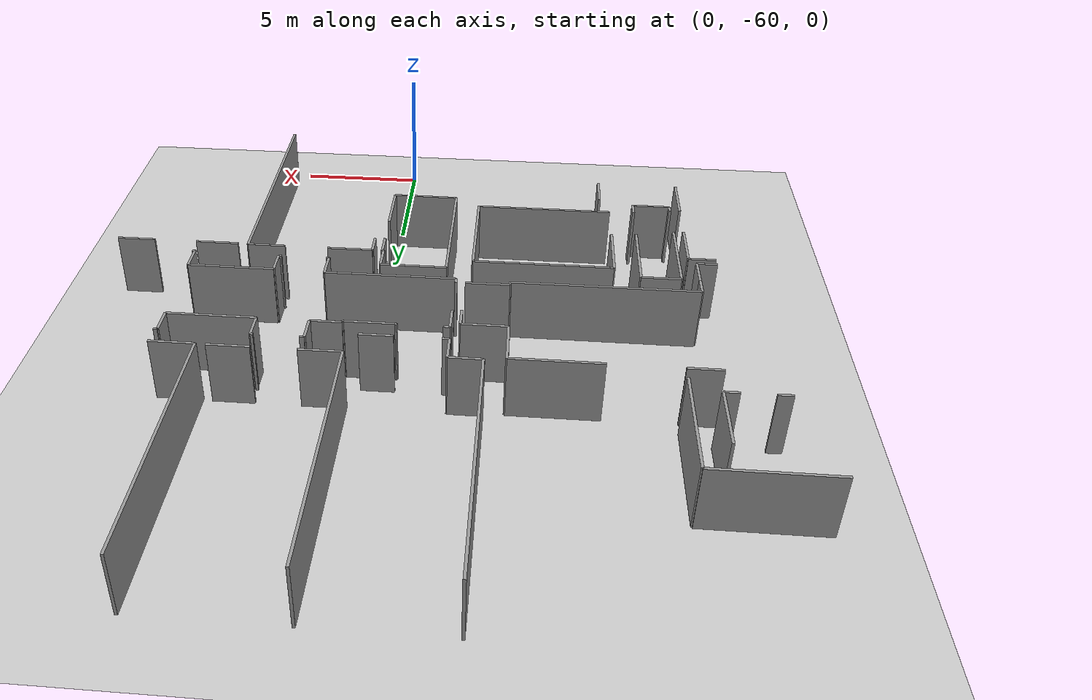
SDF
<sdf version="1.6">
 <world name="default">
  <model name="ground_plane">
   <static>1</static>
   <link name="link">
    <collision name="collision">
     <geometry><plane><normal>0 0 1</normal><size>100 100</size></plane></geometry>
     <surface><friction><ode><mu>100</mu><mu2>50</mu2></ode></friction></surface>
    </collision>
    <visual name="visual">
     <cast_shadows>0</cast_shadows>
     <geometry><plane><normal>0 0 1</normal><size>100 100</size></plane></geometry>
     <material>
      <script><uri>file://media/materials/scripts/gazebo.material</uri><name>Gazebo/Grey</name></script>
     </material>
    </visual>
   </link>
  </model>
  <model name="0510045922_A-40">
   <static>1</static>
   <link name="Wall_1206">
    <collision name="Wall_1206_Collision">
     <geometry><box><size>2.49577428989 0.1 2.5</size></box></geometry>
     <pose>1.24788714495 0 1.25 0 0 0</pose>
    </collision>
    <visual name="Wall_1206_Visual">
     <pose>1.24788714495 0 1.25 0 0 0</pose>
     <geometry><box><size>2.49577428989 0.1 2.5</size></box></geometry>
     <material>
      <script><uri>file://media/materials/scripts/gazebo.material</uri><name>Gazebo/Grey</name></script>
      <ambient>1 1 1 1</ambient>
     </material>
    </visual>
    <pose>122.225379678 -140.93827286 0 0 0 -1.57079632679</pose>
   </link>
   <link name="Wall_1207">
    <collision name="Wall_1207_Collision">
     <geometry><box><size>0.552583084451 0.1 2.5</size></box></geometry>
     <pose>0.276291542225 0 1.25 0 0 0</pose>
    </collision>
    <visual name="Wall_1207_Visual">
     <pose>0.276291542225 0 1.25 0 0 0</pose>
     <geometry><box><size>0.552583084451 0.1 2.5</size></box></geometry>
     <material>
      <script><uri>file://media/materials/scripts/gazebo.material</uri><name>Gazebo/Grey</name></script>
      <ambient>1 1 1 1</ambient>
     </material>
    </visual>
    <pose>122.225379678 -143.43404715 0 0 0 3.14159265359</pose>
   </link>
   <link name="Wall_1208">
    <collision name="Wall_1208_Collision">
     <geometry><box><size>0.543960271868 0.1 2.5</size></box></geometry>
     <pose>0.271980135934 0 1.25 0 0 0</pose>
    </collision>
    <visual name="Wall_1208_Visual">
     <pose>0.271980135934 0 1.25 0 0 0</pose>
     <geometry><box><size>0.543960271868 0.1 2.5</size></box></geometry>
     <material>
      <script><uri>file://media/materials/scripts/gazebo.material</uri><name>Gazebo/Grey</name></script>
      <ambient>1 1 1 1</ambient>
     </material>
    </visual>
    <pose>120.493156256 -143.43404715 0 0 0 -3.13318163699</pose>
   </link>
   <link name="Wall_1466">
    <collision name="Wall_1466_Collision">
     <geometry><box><size>4.32128105738 0.1 2.5</size></box></geometry>
     <pose>2.16064052869 0 1.25 0 0 0</pose>
    </collision>
    <visual name="Wall_1466_Visual">
     <pose>2.16064052869 0 1.25 0 0 0</pose>
     <geometry><box><size>4.32128105738 0.1 2.5</size></box></geometry>
     <material>
      <script><uri>file://media/materials/scripts/gazebo.material</uri><name>Gazebo/Grey</name></script>
      <ambient>1 1 1 1</ambient>
     </material>
    </visual>
    <pose>123.285302154 -144.07076317 0 0 0 1.57079632679</pose>
   </link>
   <link name="Wall_1467">
    <collision name="Wall_1467_Collision">
     <geometry><box><size>4.37211666773 0.1 2.5</size></box></geometry>
     <pose>2.18605833386 0 1.25 0 0 0</pose>
    </collision>
    <visual name="Wall_1467_Visual">
     <pose>2.18605833386 0 1.25 0 0 0</pose>
     <geometry><box><size>4.37211666773 0.1 2.5</size></box></geometry>
     <material>
      <script><uri>file://media/materials/scripts/gazebo.material</uri><name>Gazebo/Grey</name></script>
      <ambient>1 1 1 1</ambient>
     </material>
    </visual>
    <pose>123.285302154 -139.749482112 0 0 0 3.14159265359</pose>
   </link>
   <link name="Wall_1473">
    <collision name="Wall_1473_Collision">
     <geometry><box><size>1.28054902459 0.1 2.5</size></box></geometry>
     <pose>0.640274512296 0 1.25 0 0 0</pose>
    </collision>
    <visual name="Wall_1473_Visual">
     <pose>0.640274512296 0 1.25 0 0 0</pose>
     <geometry><box><size>1.28054902459 0.1 2.5</size></box></geometry>
     <material>
      <script><uri>file://media/materials/scripts/gazebo.material</uri><name>Gazebo/Grey</name></script>
      <ambient>1 1 1 1</ambient>
     </material>
    </visual>
    <pose>122.009582513 -144.58598208 0 0 0 0.0</pose>
   </link>
   <link name="Wall_1474">
    <collision name="Wall_1474_Collision">
     <geometry><box><size>3.34905000953 0.1 2.5</size></box></geometry>
     <pose>1.67452500477 0 1.25 0 0 0</pose>
    </collision>
    <visual name="Wall_1474_Visual">
     <pose>1.67452500477 0 1.25 0 0 0</pose>
     <geometry><box><size>3.34905000953 0.1 2.5</size></box></geometry>
     <material>
      <script><uri>file://media/materials/scripts/gazebo.material</uri><name>Gazebo/Grey</name></script>
      <ambient>1 1 1 1</ambient>
     </material>
    </visual>
    <pose>125.945783822 -144.58598208 0 0 0 0.0</pose>
   </link>
   <link name="Wall_1475">
    <collision name="Wall_1475_Collision">
     <geometry><box><size>1.83516553346 0.1 2.5</size></box></geometry>
     <pose>0.917582766728 0 1.25 0 0 0</pose>
    </collision>
    <visual name="Wall_1475_Visual">
     <pose>0.917582766728 0 1.25 0 0 0</pose>
     <geometry><box><size>1.83516553346 0.1 2.5</size></box></geometry>
     <material>
      <script><uri>file://media/materials/scripts/gazebo.material</uri><name>Gazebo/Grey</name></script>
      <ambient>1 1 1 1</ambient>
     </material>
    </visual>
    <pose>129.294833831 -144.58598208 0 0 0 -1.57079632679</pose>
   </link>
   <link name="Wall_1476">
    <collision name="Wall_1476_Collision">
     <geometry><box><size>1.70604308318 0.1 2.5</size></box></geometry>
     <pose>0.85302154159 0 1.25 0 0 0</pose>
    </collision>
    <visual name="Wall_1476_Visual">
     <pose>0.85302154159 0 1.25 0 0 0</pose>
     <geometry><box><size>1.70604308318 0.1 2.5</size></box></geometry>
     <material>
      <script><uri>file://media/materials/scripts/gazebo.material</uri><name>Gazebo/Grey</name></script>
      <ambient>1 1 1 1</ambient>
     </material>
    </visual>
    <pose>129.294833831 -146.421147614 0 0 0 0.0</pose>
   </link>
   <link name="Wall_1477">
    <collision name="Wall_1477_Collision">
     <geometry><box><size>0.838787570693 0.1 2.5</size></box></geometry>
     <pose>0.419393785347 0 1.25 0 0 0</pose>
    </collision>
    <visual name="Wall_1477_Visual">
     <pose>0.419393785347 0 1.25 0 0 0</pose>
     <geometry><box><size>0.838787570693 0.1 2.5</size></box></geometry>
     <material>
      <script><uri>file://media/materials/scripts/gazebo.material</uri><name>Gazebo/Grey</name></script>
      <ambient>1 1 1 1</ambient>
     </material>
    </visual>
    <pose>131.000876914 -146.421147614 0 0 0 -1.57079632679</pose>
   </link>
   <link name="Wall_1478">
    <collision name="Wall_1478_Collision">
     <geometry><box><size>1.6717290462 0.1 2.5</size></box></geometry>
     <pose>0.835864523098 0 1.25 0 0 0</pose>
    </collision>
    <visual name="Wall_1478_Visual">
     <pose>0.835864523098 0 1.25 0 0 0</pose>
     <geometry><box><size>1.6717290462 0.1 2.5</size></box></geometry>
     <material>
      <script><uri>file://media/materials/scripts/gazebo.material</uri><name>Gazebo/Grey</name></script>
      <ambient>1 1 1 1</ambient>
     </material>
    </visual>
    <pose>131.000876914 -149.031810383 0 0 0 3.14159265359</pose>
   </link>
   <link name="Wall_1479">
    <collision name="Wall_1479_Collision">
     <geometry><box><size>0.178687170363 0.1 2.5</size></box></geometry>
     <pose>0.0893435851814 0 1.25 0 0 0</pose>
    </collision>
    <visual name="Wall_1479_Visual">
     <pose>0.0893435851814 0 1.25 0 0 0</pose>
     <geometry><box><size>0.178687170363 0.1 2.5</size></box></geometry>
     <material>
      <script><uri>file://media/materials/scripts/gazebo.material</uri><name>Gazebo/Grey</name></script>
      <ambient>1 1 1 1</ambient>
     </material>
    </visual>
    <pose>129.329147868 -149.031810383 0 0 0 -1.57079632679</pose>
   </link>
   <link name="Wall_1480">
    <collision name="Wall_1480_Collision">
     <geometry><box><size>7.05217004512 0.1 2.5</size></box></geometry>
     <pose>3.52608502256 0 1.25 0 0 0</pose>
    </collision>
    <visual name="Wall_1480_Visual">
     <pose>3.52608502256 0 1.25 0 0 0</pose>
     <geometry><box><size>7.05217004512 0.1 2.5</size></box></geometry>
     <material>
      <script><uri>file://media/materials/scripts/gazebo.material</uri><name>Gazebo/Grey</name></script>
      <ambient>1 1 1 1</ambient>
     </material>
    </visual>
    <pose>129.329147868 -149.210497554 0 0 0 3.14159265359</pose>
   </link>
   <link name="Wall_1481">
    <collision name="Wall_1481_Collision">
     <geometry><box><size>0.744487513503 0.1 2.5</size></box></geometry>
     <pose>0.372243756752 0 1.25 0 0 0</pose>
    </collision>
    <visual name="Wall_1481_Visual">
     <pose>0.372243756752 0 1.25 0 0 0</pose>
     <geometry><box><size>0.744487513503 0.1 2.5</size></box></geometry>
     <material>
      <script><uri>file://media/materials/scripts/gazebo.material</uri><name>Gazebo/Grey</name></script>
      <ambient>1 1 1 1</ambient>
     </material>
    </visual>
    <pose>122.276977823 -149.210497554 0 0 0 -1.57079632679</pose>
   </link>
   <link name="Wall_1482">
    <collision name="Wall_1482_Collision">
     <geometry><box><size>1.16642307937 0.1 2.5</size></box></geometry>
     <pose>0.583211539684 0 1.25 0 0 0</pose>
    </collision>
    <visual name="Wall_1482_Visual">
     <pose>0.583211539684 0 1.25 0 0 0</pose>
     <geometry><box><size>1.16642307937 0.1 2.5</size></box></geometry>
     <material>
      <script><uri>file://media/materials/scripts/gazebo.material</uri><name>Gazebo/Grey</name></script>
      <ambient>1 1 1 1</ambient>
     </material>
    </visual>
    <pose>122.276977823 -149.954985067 0 0 0 -1.57079632679</pose>
   </link>
   <link name="Wall_1483">
    <collision name="Wall_1483_Collision">
     <geometry><box><size>0.78236004321 0.1 2.5</size></box></geometry>
     <pose>0.391180021605 0 1.25 0 0 0</pose>
    </collision>
    <visual name="Wall_1483_Visual">
     <pose>0.391180021605 0 1.25 0 0 0</pose>
     <geometry><box><size>0.78236004321 0.1 2.5</size></box></geometry>
     <material>
      <script><uri>file://media/materials/scripts/gazebo.material</uri><name>Gazebo/Grey</name></script>
      <ambient>1 1 1 1</ambient>
     </material>
    </visual>
    <pose>122.276977823 -151.121408146 0 0 0 3.14159265359</pose>
   </link>
   <link name="Wall_1493">
    <collision name="Wall_1493_Collision">
     <geometry><box><size>5.35629408401 0.1 2.5</size></box></geometry>
     <pose>2.678147042 0 1.25 0 0 0</pose>
    </collision>
    <visual name="Wall_1493_Visual">
     <pose>2.678147042 0 1.25 0 0 0</pose>
     <geometry><box><size>5.35629408401 0.1 2.5</size></box></geometry>
     <material>
      <script><uri>file://media/materials/scripts/gazebo.material</uri><name>Gazebo/Grey</name></script>
      <ambient>1 1 1 1</ambient>
     </material>
    </visual>
    <pose>131.782220245 -155.353981064 0 0 0 1.57079632679</pose>
   </link>
   <link name="Wall_1494">
    <collision name="Wall_1494_Collision">
     <geometry><box><size>2.52068373896 0.1 2.5</size></box></geometry>
     <pose>1.26034186948 0 1.25 0 0 0</pose>
    </collision>
    <visual name="Wall_1494_Visual">
     <pose>1.26034186948 0 1.25 0 0 0</pose>
     <geometry><box><size>2.52068373896 0.1 2.5</size></box></geometry>
     <material>
      <script><uri>file://media/materials/scripts/gazebo.material</uri><name>Gazebo/Grey</name></script>
      <ambient>1 1 1 1</ambient>
     </material>
    </visual>
    <pose>131.782220245 -149.99768698 0 0 0 0.0</pose>
   </link>
   <link name="Wall_1495">
    <collision name="Wall_1495_Collision">
     <geometry><box><size>0.973756116159 0.1 2.5</size></box></geometry>
     <pose>0.48687805808 0 1.25 0 0 0</pose>
    </collision>
    <visual name="Wall_1495_Visual">
     <pose>0.48687805808 0 1.25 0 0 0</pose>
     <geometry><box><size>0.973756116159 0.1 2.5</size></box></geometry>
     <material>
      <script><uri>file://media/materials/scripts/gazebo.material</uri><name>Gazebo/Grey</name></script>
      <ambient>1 1 1 1</ambient>
     </material>
    </visual>
    <pose>134.302903984 -149.99768698 0 0 0 -1.57079632679</pose>
   </link>
   <link name="Wall_1496">
    <collision name="Wall_1496_Collision">
     <geometry><box><size>0.0510897883968 0.1 2.5</size></box></geometry>
     <pose>0.0255448941984 0 1.25 0 0 0</pose>
    </collision>
    <visual name="Wall_1496_Visual">
     <pose>0.0255448941984 0 1.25 0 0 0</pose>
     <geometry><box><size>0.0510897883968 0.1 2.5</size></box></geometry>
     <material>
      <script><uri>file://media/materials/scripts/gazebo.material</uri><name>Gazebo/Grey</name></script>
      <ambient>1 1 1 1</ambient>
     </material>
    </visual>
    <pose>134.302903984 -150.971443096 0 0 0 0.0</pose>
   </link>
   <link name="Wall_1497">
    <collision name="Wall_1497_Collision">
     <geometry><box><size>0.901315371418 0.1 2.5</size></box></geometry>
     <pose>0.450657685709 0 1.25 0 0 0</pose>
    </collision>
    <visual name="Wall_1497_Visual">
     <pose>0.450657685709 0 1.25 0 0 0</pose>
     <geometry><box><size>0.901315371418 0.1 2.5</size></box></geometry>
     <material>
      <script><uri>file://media/materials/scripts/gazebo.material</uri><name>Gazebo/Grey</name></script>
      <ambient>1 1 1 1</ambient>
     </material>
    </visual>
    <pose>134.353993773 -150.971443096 0 0 0 -1.57079632679</pose>
   </link>
   <link name="Wall_1498">
    <collision name="Wall_1498_Collision">
     <geometry><box><size>2.16915549342 0.1 2.5</size></box></geometry>
     <pose>1.08457774671 0 1.25 0 0 0</pose>
    </collision>
    <visual name="Wall_1498_Visual">
     <pose>1.08457774671 0 1.25 0 0 0</pose>
     <geometry><box><size>2.16915549342 0.1 2.5</size></box></geometry>
     <material>
      <script><uri>file://media/materials/scripts/gazebo.material</uri><name>Gazebo/Grey</name></script>
      <ambient>1 1 1 1</ambient>
     </material>
    </visual>
    <pose>134.353993773 -153.202109678 0 0 0 -1.57079632679</pose>
   </link>
   <link name="Wall_1499">
    <collision name="Wall_1499_Collision">
     <geometry><box><size>2.57183160731 0.1 2.5</size></box></geometry>
     <pose>1.28591580366 0 1.25 0 0 0</pose>
    </collision>
    <visual name="Wall_1499_Visual">
     <pose>1.28591580366 0 1.25 0 0 0</pose>
     <geometry><box><size>2.57183160731 0.1 2.5</size></box></geometry>
     <material>
      <script><uri>file://media/materials/scripts/gazebo.material</uri><name>Gazebo/Grey</name></script>
      <ambient>1 1 1 1</ambient>
     </material>
    </visual>
    <pose>134.353993773 -155.371265171 0 0 0 3.13487205898</pose>
   </link>
   <link name="Wall_1501">
    <collision name="Wall_1501_Collision">
     <geometry><box><size>0.855054966004 0.1 2.5</size></box></geometry>
     <pose>0.427527483002 0 1.25 0 0 0</pose>
    </collision>
    <visual name="Wall_1501_Visual">
     <pose>0.427527483002 0 1.25 0 0 0</pose>
     <geometry><box><size>0.855054966004 0.1 2.5</size></box></geometry>
     <material>
      <script><uri>file://media/materials/scripts/gazebo.material</uri><name>Gazebo/Grey</name></script>
      <ambient>1 1 1 1</ambient>
     </material>
    </visual>
    <pose>134.74186948 -151.839461143 0 0 0 1.57079632679</pose>
   </link>
   <link name="Wall_1502">
    <collision name="Wall_1502_Collision">
     <geometry><box><size>1.75942047404 0.1 2.5</size></box></geometry>
     <pose>0.879710237021 0 1.25 0 0 0</pose>
    </collision>
    <visual name="Wall_1502_Visual">
     <pose>0.879710237021 0 1.25 0 0 0</pose>
     <geometry><box><size>1.75942047404 0.1 2.5</size></box></geometry>
     <material>
      <script><uri>file://media/materials/scripts/gazebo.material</uri><name>Gazebo/Grey</name></script>
      <ambient>1 1 1 1</ambient>
     </material>
    </visual>
    <pose>134.74186948 -150.984406177 0 0 0 0.0</pose>
   </link>
   <link name="Wall_1503">
    <collision name="Wall_1503_Collision">
     <geometry><box><size>1.46965749508 0.1 2.5</size></box></geometry>
     <pose>0.734828747538 0 1.25 0 0 0</pose>
    </collision>
    <visual name="Wall_1503_Visual">
     <pose>0.734828747538 0 1.25 0 0 0</pose>
     <geometry><box><size>1.46965749508 0.1 2.5</size></box></geometry>
     <material>
      <script><uri>file://media/materials/scripts/gazebo.material</uri><name>Gazebo/Grey</name></script>
      <ambient>1 1 1 1</ambient>
     </material>
    </visual>
    <pose>138.178356739 -150.984406177 0 0 0 0.0</pose>
   </link>
   <link name="Wall_1504">
    <collision name="Wall_1504_Collision">
     <geometry><box><size>9.61072631378 0.1 2.5</size></box></geometry>
     <pose>4.80536315689 0 1.25 0 0 0</pose>
    </collision>
    <visual name="Wall_1504_Visual">
     <pose>4.80536315689 0 1.25 0 0 0</pose>
     <geometry><box><size>9.61072631378 0.1 2.5</size></box></geometry>
     <material>
      <script><uri>file://media/materials/scripts/gazebo.material</uri><name>Gazebo/Grey</name></script>
      <ambient>1 1 1 1</ambient>
     </material>
    </visual>
    <pose>139.648014234 -150.984406177 0 0 0 -1.57079632679</pose>
   </link>
   <link name="Wall_1508">
    <collision name="Wall_1508_Collision">
     <geometry><box><size>1.67528753892 0.1 2.5</size></box></geometry>
     <pose>0.83764376946 0 1.25 0 0 0</pose>
    </collision>
    <visual name="Wall_1508_Visual">
     <pose>0.83764376946 0 1.25 0 0 0</pose>
     <geometry><box><size>1.67528753892 0.1 2.5</size></box></geometry>
     <material>
      <script><uri>file://media/materials/scripts/gazebo.material</uri><name>Gazebo/Grey</name></script>
      <ambient>1 1 1 1</ambient>
     </material>
    </visual>
    <pose>140.048853022 -151.004232065 0 0 0 0.0</pose>
   </link>
   <link name="Wall_1509">
    <collision name="Wall_1509_Collision">
     <geometry><box><size>1.48439982208 0.1 2.5</size></box></geometry>
     <pose>0.742199911038 0 1.25 0 0 0</pose>
    </collision>
    <visual name="Wall_1509_Visual">
     <pose>0.742199911038 0 1.25 0 0 0</pose>
     <geometry><box><size>1.48439982208 0.1 2.5</size></box></geometry>
     <material>
      <script><uri>file://media/materials/scripts/gazebo.material</uri><name>Gazebo/Grey</name></script>
      <ambient>1 1 1 1</ambient>
     </material>
    </visual>
    <pose>143.385194128 -151.004232065 0 0 0 0.0</pose>
   </link>
   <link name="Wall_1581">
    <collision name="Wall_1581_Collision">
     <geometry><box><size>9.63716083116 0.1 2.5</size></box></geometry>
     <pose>4.81858041558 0 1.25 0 0 0</pose>
    </collision>
    <visual name="Wall_1581_Visual">
     <pose>4.81858041558 0 1.25 0 0 0</pose>
     <geometry><box><size>9.63716083116 0.1 2.5</size></box></geometry>
     <material>
      <script><uri>file://media/materials/scripts/gazebo.material</uri><name>Gazebo/Grey</name></script>
      <ambient>1 1 1 1</ambient>
     </material>
    </visual>
    <pose>140.030043846 -144.47516045 0 0 0 1.57079632679</pose>
   </link>
   <link name="Wall_1586">
    <collision name="Wall_1586_Collision">
     <geometry><box><size>1.66741501307 0.1 2.5</size></box></geometry>
     <pose>0.833707506537 0 1.25 0 0 0</pose>
    </collision>
    <visual name="Wall_1586_Visual">
     <pose>0.833707506537 0 1.25 0 0 0</pose>
     <geometry><box><size>1.66741501307 0.1 2.5</size></box></geometry>
     <material>
      <script><uri>file://media/materials/scripts/gazebo.material</uri><name>Gazebo/Grey</name></script>
      <ambient>1 1 1 1</ambient>
     </material>
    </visual>
    <pose>141.697451865 -144.470331067 0 0 0 -3.13869632023</pose>
   </link>
   <link name="Wall_1587">
    <collision name="Wall_1587_Collision">
     <geometry><box><size>9.61936836754 0.1 2.5</size></box></geometry>
     <pose>4.80968418377 0 1.25 0 0 0</pose>
    </collision>
    <visual name="Wall_1587_Visual">
     <pose>4.80968418377 0 1.25 0 0 0</pose>
     <geometry><box><size>9.61936836754 0.1 2.5</size></box></geometry>
     <material>
      <script><uri>file://media/materials/scripts/gazebo.material</uri><name>Gazebo/Grey</name></script>
      <ambient>1 1 1 1</ambient>
     </material>
    </visual>
    <pose>134.886242613 -144.466264218 0 0 0 1.57079632679</pose>
   </link>
   <link name="Wall_1591">
    <collision name="Wall_1591_Collision">
     <geometry><box><size>1.55099447163 0.1 2.5</size></box></geometry>
     <pose>0.775497235814 0 1.25 0 0 0</pose>
    </collision>
    <visual name="Wall_1591_Visual">
     <pose>0.775497235814 0 1.25 0 0 0</pose>
     <geometry><box><size>1.55099447163 0.1 2.5</size></box></geometry>
     <material>
      <script><uri>file://media/materials/scripts/gazebo.material</uri><name>Gazebo/Grey</name></script>
      <ambient>1 1 1 1</ambient>
     </material>
    </visual>
    <pose>139.659198068 -144.451521891 0 0 0 3.14159265359</pose>
   </link>
   <link name="Wall_1592">
    <collision name="Wall_1592_Collision">
     <geometry><box><size>1.56987286994 0.1 2.5</size></box></geometry>
     <pose>0.784936434969 0 1.25 0 0 0</pose>
    </collision>
    <visual name="Wall_1592_Visual">
     <pose>0.784936434969 0 1.25 0 0 0</pose>
     <geometry><box><size>1.56987286994 0.1 2.5</size></box></geometry>
     <material>
      <script><uri>file://media/materials/scripts/gazebo.material</uri><name>Gazebo/Grey</name></script>
      <ambient>1 1 1 1</ambient>
     </material>
    </visual>
    <pose>136.45604626 -144.451521891 0 0 0 -3.13220173795</pose>
   </link>
   <link name="Wall_1593">
    <collision name="Wall_1593_Collision">
     <geometry><box><size>9.62546864078 0.1 2.5</size></box></geometry>
     <pose>4.81273432039 0 1.25 0 0 0</pose>
    </collision>
    <visual name="Wall_1593_Visual">
     <pose>4.81273432039 0 1.25 0 0 0</pose>
     <geometry><box><size>9.62546864078 0.1 2.5</size></box></geometry>
     <material>
      <script><uri>file://media/materials/scripts/gazebo.material</uri><name>Gazebo/Grey</name></script>
      <ambient>1 1 1 1</ambient>
     </material>
    </visual>
    <pose>130.08558175 -144.464230794 0 0 0 1.57079632679</pose>
   </link>
   <link name="Wall_1597">
    <collision name="Wall_1597_Collision">
     <geometry><box><size>1.24903094618 0.1 2.5</size></box></geometry>
     <pose>0.624515473089 0 1.25 0 0 0</pose>
    </collision>
    <visual name="Wall_1597_Visual">
     <pose>0.624515473089 0 1.25 0 0 0</pose>
     <geometry><box><size>1.24903094618 0.1 2.5</size></box></geometry>
     <material>
      <script><uri>file://media/materials/scripts/gazebo.material</uri><name>Gazebo/Grey</name></script>
      <ambient>1 1 1 1</ambient>
     </material>
    </visual>
    <pose>134.510821631 -145.505089915 0 0 0 3.14159265359</pose>
   </link>
   <link name="Wall_1598">
    <collision name="Wall_1598_Collision">
     <geometry><box><size>0.265616064053 0.1 2.5</size></box></geometry>
     <pose>0.132808032026 0 1.25 0 0 0</pose>
    </collision>
    <visual name="Wall_1598_Visual">
     <pose>0.132808032026 0 1.25 0 0 0</pose>
     <geometry><box><size>0.265616064053 0.1 2.5</size></box></geometry>
     <material>
      <script><uri>file://media/materials/scripts/gazebo.material</uri><name>Gazebo/Grey</name></script>
      <ambient>1 1 1 1</ambient>
     </material>
    </visual>
    <pose>131.575065133 -145.505089915 0 0 0 3.14159265359</pose>
   </link>
   <link name="Wall_1599">
    <collision name="Wall_1599_Collision">
     <geometry><box><size>1.03704645104 0.1 2.5</size></box></geometry>
     <pose>0.518523225519 0 1.25 0 0 0</pose>
    </collision>
    <visual name="Wall_1599_Visual">
     <pose>0.518523225519 0 1.25 0 0 0</pose>
     <geometry><box><size>1.03704645104 0.1 2.5</size></box></geometry>
     <material>
      <script><uri>file://media/materials/scripts/gazebo.material</uri><name>Gazebo/Grey</name></script>
      <ambient>1 1 1 1</ambient>
     </material>
    </visual>
    <pose>131.309449069 -145.505089915 0 0 0 1.57079632679</pose>
   </link>
   <link name="Wall_1600">
    <collision name="Wall_1600_Collision">
     <geometry><box><size>1.22387325778 0.1 2.5</size></box></geometry>
     <pose>0.611936628891 0 1.25 0 0 0</pose>
    </collision>
    <visual name="Wall_1600_Visual">
     <pose>0.611936628891 0 1.25 0 0 0</pose>
     <geometry><box><size>1.22387325778 0.1 2.5</size></box></geometry>
     <material>
      <script><uri>file://media/materials/scripts/gazebo.material</uri><name>Gazebo/Grey</name></script>
      <ambient>1 1 1 1</ambient>
     </material>
    </visual>
    <pose>131.309449069 -144.468043464 0 0 0 3.13847739887</pose>
   </link>
   <link name="Wall_1601">
    <collision name="Wall_1601_Collision">
     <geometry><box><size>1.87583402173 0.1 2.5</size></box></geometry>
     <pose>0.937917010866 0 1.25 0 0 0</pose>
    </collision>
    <visual name="Wall_1601_Visual">
     <pose>0.937917010866 0 1.25 0 0 0</pose>
     <geometry><box><size>1.87583402173 0.1 2.5</size></box></geometry>
     <material>
      <script><uri>file://media/materials/scripts/gazebo.material</uri><name>Gazebo/Grey</name></script>
      <ambient>1 1 1 1</ambient>
     </material>
    </visual>
    <pose>133.295342187 -146.220092775 0 0 0 0.0</pose>
   </link>
   <link name="Wall_1602">
    <collision name="Wall_1602_Collision">
     <geometry><box><size>0.0719323886382 0.1 2.5</size></box></geometry>
     <pose>0.0359661943191 0 1.25 0 0 0</pose>
    </collision>
    <visual name="Wall_1602_Visual">
     <pose>0.0359661943191 0 1.25 0 0 0</pose>
     <geometry><box><size>0.0719323886382 0.1 2.5</size></box></geometry>
     <material>
      <script><uri>file://media/materials/scripts/gazebo.material</uri><name>Gazebo/Grey</name></script>
      <ambient>1 1 1 1</ambient>
     </material>
    </visual>
    <pose>135.171176209 -146.220092775 0 0 0 1.57079632679</pose>
   </link>
   <link name="Wall_1603">
    <collision name="Wall_1603_Collision">
     <geometry><box><size>1.17354006482 0.1 2.5</size></box></geometry>
     <pose>0.586770032408 0 1.25 0 0 0</pose>
    </collision>
    <visual name="Wall_1603_Visual">
     <pose>0.586770032408 0 1.25 0 0 0</pose>
     <geometry><box><size>1.17354006482 0.1 2.5</size></box></geometry>
     <material>
      <script><uri>file://media/materials/scripts/gazebo.material</uri><name>Gazebo/Grey</name></script>
      <ambient>1 1 1 1</ambient>
     </material>
    </visual>
    <pose>135.171176209 -146.148160386 0 0 0 0.0</pose>
   </link>
   <link name="Wall_1604">
    <collision name="Wall_1604_Collision">
     <geometry><box><size>0.974010294211 0.1 2.5</size></box></geometry>
     <pose>0.487005147106 0 1.25 0 0 0</pose>
    </collision>
    <visual name="Wall_1604_Visual">
     <pose>0.487005147106 0 1.25 0 0 0</pose>
     <geometry><box><size>0.974010294211 0.1 2.5</size></box></geometry>
     <material>
      <script><uri>file://media/materials/scripts/gazebo.material</uri><name>Gazebo/Grey</name></script>
      <ambient>1 1 1 1</ambient>
     </material>
    </visual>
    <pose>136.344716274 -146.148160386 0 0 0 1.57079632679</pose>
   </link>
   <link name="Wall_1605">
    <collision name="Wall_1605_Collision">
     <geometry><box><size>0.172841075173 0.1 2.5</size></box></geometry>
     <pose>0.0864205375866 0 1.25 0 0 0</pose>
    </collision>
    <visual name="Wall_1605_Visual">
     <pose>0.0864205375866 0 1.25 0 0 0</pose>
     <geometry><box><size>0.172841075173 0.1 2.5</size></box></geometry>
     <material>
      <script><uri>file://media/materials/scripts/gazebo.material</uri><name>Gazebo/Grey</name></script>
      <ambient>1 1 1 1</ambient>
     </material>
    </visual>
    <pose>136.344716274 -145.174150092 0 0 0 0.0</pose>
   </link>
   <link name="Wall_1606">
    <collision name="Wall_1606_Collision">
     <geometry><box><size>0.0983669060177 0.1 2.5</size></box></geometry>
     <pose>0.0491834530088 0 1.25 0 0 0</pose>
    </collision>
    <visual name="Wall_1606_Visual">
     <pose>0.0491834530088 0 1.25 0 0 0</pose>
     <geometry><box><size>0.0983669060177 0.1 2.5</size></box></geometry>
     <material>
      <script><uri>file://media/materials/scripts/gazebo.material</uri><name>Gazebo/Grey</name></script>
      <ambient>1 1 1 1</ambient>
     </material>
    </visual>
    <pose>138.156497426 -145.174150092 0 0 0 0.0</pose>
   </link>
   <link name="Wall_1607">
    <collision name="Wall_1607_Collision">
     <geometry><box><size>0.978585499142 0.1 2.5</size></box></geometry>
     <pose>0.489292749571 0 1.25 0 0 0</pose>
    </collision>
    <visual name="Wall_1607_Visual">
     <pose>0.489292749571 0 1.25 0 0 0</pose>
     <geometry><box><size>0.978585499142 0.1 2.5</size></box></geometry>
     <material>
      <script><uri>file://media/materials/scripts/gazebo.material</uri><name>Gazebo/Grey</name></script>
      <ambient>1 1 1 1</ambient>
     </material>
    </visual>
    <pose>138.254864332 -145.174150092 0 0 0 -1.57079632679</pose>
   </link>
   <link name="Wall_1608">
    <collision name="Wall_1608_Collision">
     <geometry><box><size>3.30609391879 0.1 2.5</size></box></geometry>
     <pose>1.6530469594 0 1.25 0 0 0</pose>
    </collision>
    <visual name="Wall_1608_Visual">
     <pose>1.6530469594 0 1.25 0 0 0</pose>
     <geometry><box><size>3.30609391879 0.1 2.5</size></box></geometry>
     <material>
      <script><uri>file://media/materials/scripts/gazebo.material</uri><name>Gazebo/Grey</name></script>
      <ambient>1 1 1 1</ambient>
     </material>
    </visual>
    <pose>138.254864332 -146.152735591 0 0 0 0.0</pose>
   </link>
   <link name="Wall_1609">
    <collision name="Wall_1609_Collision">
     <geometry><box><size>0.971976869797 0.1 2.5</size></box></geometry>
     <pose>0.485988434899 0 1.25 0 0 0</pose>
    </collision>
    <visual name="Wall_1609_Visual">
     <pose>0.485988434899 0 1.25 0 0 0</pose>
     <geometry><box><size>0.971976869797 0.1 2.5</size></box></geometry>
     <material>
      <script><uri>file://media/materials/scripts/gazebo.material</uri><name>Gazebo/Grey</name></script>
      <ambient>1 1 1 1</ambient>
     </material>
    </visual>
    <pose>141.560958251 -146.152735591 0 0 0 1.57079632679</pose>
   </link>
   <link name="Wall_1610">
    <collision name="Wall_1610_Collision">
     <geometry><box><size>0.146660735845 0.1 2.5</size></box></geometry>
     <pose>0.0733303679227 0 1.25 0 0 0</pose>
    </collision>
    <visual name="Wall_1610_Visual">
     <pose>0.0733303679227 0 1.25 0 0 0</pose>
     <geometry><box><size>0.146660735845 0.1 2.5</size></box></geometry>
     <material>
      <script><uri>file://media/materials/scripts/gazebo.material</uri><name>Gazebo/Grey</name></script>
      <ambient>1 1 1 1</ambient>
     </material>
    </visual>
    <pose>141.560958251 -145.180758721 0 0 0 0.0</pose>
   </link>
   <link name="Wall_1672">
    <collision name="Wall_1672_Collision">
     <geometry><box><size>0.0991294401728 0.1 2.5</size></box></geometry>
     <pose>0.0495647200864 0 1.25 0 0 0</pose>
    </collision>
    <visual name="Wall_1672_Visual">
     <pose>0.0495647200864 0 1.25 0 0 0</pose>
     <geometry><box><size>0.0991294401728 0.1 2.5</size></box></geometry>
     <material>
      <script><uri>file://media/materials/scripts/gazebo.material</uri><name>Gazebo/Grey</name></script>
      <ambient>1 1 1 1</ambient>
     </material>
    </visual>
    <pose>141.698214399 -150.330406049 0 0 0 3.14159265359</pose>
   </link>
   <link name="Wall_1673">
    <collision name="Wall_1673_Collision">
     <geometry><box><size>1.01112028976 0.1 2.5</size></box></geometry>
     <pose>0.505560144881 0 1.25 0 0 0</pose>
    </collision>
    <visual name="Wall_1673_Visual">
     <pose>0.505560144881 0 1.25 0 0 0</pose>
     <geometry><box><size>1.01112028976 0.1 2.5</size></box></geometry>
     <material>
      <script><uri>file://media/materials/scripts/gazebo.material</uri><name>Gazebo/Grey</name></script>
      <ambient>1 1 1 1</ambient>
     </material>
    </visual>
    <pose>141.599084959 -150.330406049 0 0 0 1.57079632679</pose>
   </link>
   <link name="Wall_1674">
    <collision name="Wall_1674_Collision">
     <geometry><box><size>3.30583974074 0.1 2.5</size></box></geometry>
     <pose>1.65291987037 0 1.25 0 0 0</pose>
    </collision>
    <visual name="Wall_1674_Visual">
     <pose>1.65291987037 0 1.25 0 0 0</pose>
     <geometry><box><size>3.30583974074 0.1 2.5</size></box></geometry>
     <material>
      <script><uri>file://media/materials/scripts/gazebo.material</uri><name>Gazebo/Grey</name></script>
      <ambient>1 1 1 1</ambient>
     </material>
    </visual>
    <pose>141.599084959 -149.31928576 0 0 0 3.14159265359</pose>
   </link>
   <link name="Wall_1675">
    <collision name="Wall_1675_Collision">
     <geometry><box><size>0.958251255004 0.1 2.5</size></box></geometry>
     <pose>0.479125627502 0 1.25 0 0 0</pose>
    </collision>
    <visual name="Wall_1675_Visual">
     <pose>0.479125627502 0 1.25 0 0 0</pose>
     <geometry><box><size>0.958251255004 0.1 2.5</size></box></geometry>
     <material>
      <script><uri>file://media/materials/scripts/gazebo.material</uri><name>Gazebo/Grey</name></script>
      <ambient>1 1 1 1</ambient>
     </material>
    </visual>
    <pose>138.293245218 -149.31928576 0 0 0 -1.57079632679</pose>
   </link>
   <link name="Wall_1676">
    <collision name="Wall_1676_Collision">
     <geometry><box><size>0.11488847938 0.1 2.5</size></box></geometry>
     <pose>0.0574442396899 0 1.25 0 0 0</pose>
    </collision>
    <visual name="Wall_1676_Visual">
     <pose>0.0574442396899 0 1.25 0 0 0</pose>
     <geometry><box><size>0.11488847938 0.1 2.5</size></box></geometry>
     <material>
      <script><uri>file://media/materials/scripts/gazebo.material</uri><name>Gazebo/Grey</name></script>
      <ambient>1 1 1 1</ambient>
     </material>
    </visual>
    <pose>138.293245218 -150.277537015 0 0 0 3.14159265359</pose>
   </link>
   <link name="Wall_1677">
    <collision name="Wall_1677_Collision">
     <geometry><box><size>0.103958823156 0.1 2.5</size></box></geometry>
     <pose>0.0519794115778 0 1.25 0 0 0</pose>
    </collision>
    <visual name="Wall_1677_Visual">
     <pose>0.0519794115778 0 1.25 0 0 0</pose>
     <geometry><box><size>0.103958823156 0.1 2.5</size></box></geometry>
     <material>
      <script><uri>file://media/materials/scripts/gazebo.material</uri><name>Gazebo/Grey</name></script>
      <ambient>1 1 1 1</ambient>
     </material>
    </visual>
    <pose>136.435712016 -150.277537015 0 0 0 3.14159265359</pose>
   </link>
   <link name="Wall_1678">
    <collision name="Wall_1678_Collision">
     <geometry><box><size>1.00857850925 0.1 2.5</size></box></geometry>
     <pose>0.504289254623 0 1.25 0 0 0</pose>
    </collision>
    <visual name="Wall_1678_Visual">
     <pose>0.504289254623 0 1.25 0 0 0</pose>
     <geometry><box><size>1.00857850925 0.1 2.5</size></box></geometry>
     <material>
      <script><uri>file://media/materials/scripts/gazebo.material</uri><name>Gazebo/Grey</name></script>
      <ambient>1 1 1 1</ambient>
     </material>
    </visual>
    <pose>136.331753193 -150.277537015 0 0 0 1.57079632679</pose>
   </link>
   <link name="Wall_1679">
    <collision name="Wall_1679_Collision">
     <geometry><box><size>4.98265234797 0.1 2.5</size></box></geometry>
     <pose>2.49132617398 0 1.25 0 0 0</pose>
    </collision>
    <visual name="Wall_1679_Visual">
     <pose>2.49132617398 0 1.25 0 0 0</pose>
     <geometry><box><size>4.98265234797 0.1 2.5</size></box></geometry>
     <material>
      <script><uri>file://media/materials/scripts/gazebo.material</uri><name>Gazebo/Grey</name></script>
      <ambient>1 1 1 1</ambient>
     </material>
    </visual>
    <pose>136.331753193 -149.268958505 0 0 0 3.14159265359</pose>
   </link>
   <link name="Wall_1680">
    <collision name="Wall_1680_Collision">
     <geometry><box><size>0.242485861346 0.1 2.5</size></box></geometry>
     <pose>0.121242930673 0 1.25 0 0 0</pose>
    </collision>
    <visual name="Wall_1680_Visual">
     <pose>0.121242930673 0 1.25 0 0 0</pose>
     <geometry><box><size>0.242485861346 0.1 2.5</size></box></geometry>
     <material>
      <script><uri>file://media/materials/scripts/gazebo.material</uri><name>Gazebo/Grey</name></script>
      <ambient>1 1 1 1</ambient>
     </material>
    </visual>
    <pose>131.349100845 -149.268958505 0 0 0 1.57079632679</pose>
   </link>
   <link name="Wall_1681">
    <collision name="Wall_1681_Collision">
     <geometry><box><size>1.01340789223 0.1 2.5</size></box></geometry>
     <pose>0.506703946114 0 1.25 0 0 0</pose>
    </collision>
    <visual name="Wall_1681_Visual">
     <pose>0.506703946114 0 1.25 0 0 0</pose>
     <geometry><box><size>1.01340789223 0.1 2.5</size></box></geometry>
     <material>
      <script><uri>file://media/materials/scripts/gazebo.material</uri><name>Gazebo/Grey</name></script>
      <ambient>1 1 1 1</ambient>
     </material>
    </visual>
    <pose>131.349100845 -147.216979094 0 0 0 1.57079632679</pose>
   </link>
   <link name="Wall_1682">
    <collision name="Wall_1682_Collision">
     <geometry><box><size>0.24019825888 0.1 2.5</size></box></geometry>
     <pose>0.12009912944 0 1.25 0 0 0</pose>
    </collision>
    <visual name="Wall_1682_Visual">
     <pose>0.12009912944 0 1.25 0 0 0</pose>
     <geometry><box><size>0.24019825888 0.1 2.5</size></box></geometry>
     <material>
      <script><uri>file://media/materials/scripts/gazebo.material</uri><name>Gazebo/Grey</name></script>
      <ambient>1 1 1 1</ambient>
     </material>
    </visual>
    <pose>131.349100845 -146.203571202 0 0 0 0.0</pose>
   </link>
   <link name="Wall_1683">
    <collision name="Wall_1683_Collision">
     <geometry><box><size>0.0676271266046 0.1 2.5</size></box></geometry>
     <pose>0.0338135633023 0 1.25 0 0 0</pose>
    </collision>
    <visual name="Wall_1683_Visual">
     <pose>0.0338135633023 0 1.25 0 0 0</pose>
     <geometry><box><size>0.0676271266046 0.1 2.5</size></box></geometry>
     <material>
      <script><uri>file://media/materials/scripts/gazebo.material</uri><name>Gazebo/Grey</name></script>
      <ambient>1 1 1 1</ambient>
     </material>
    </visual>
    <pose>133.22976425 -146.203571202 0 0 0 -0.246801815163</pose>
   </link>
   <link name="Wall_1787">
    <collision name="Wall_1787_Collision">
     <geometry><box><size>1.04924699752 0.1 2.5</size></box></geometry>
     <pose>0.524623498761 0 1.25 0 0 0</pose>
    </collision>
    <visual name="Wall_1787_Visual">
     <pose>0.524623498761 0 1.25 0 0 0</pose>
     <geometry><box><size>1.04924699752 0.1 2.5</size></box></geometry>
     <material>
      <script><uri>file://media/materials/scripts/gazebo.material</uri><name>Gazebo/Grey</name></script>
      <ambient>1 1 1 1</ambient>
     </material>
    </visual>
    <pose>121.520543941 -151.437605643 0 0 0 0.0</pose>
   </link>
   <link name="Wall_1788">
    <collision name="Wall_1788_Collision">
     <geometry><box><size>1.98436804982 0.1 2.5</size></box></geometry>
     <pose>0.992184024909 0 1.25 0 0 0</pose>
    </collision>
    <visual name="Wall_1788_Visual">
     <pose>0.992184024909 0 1.25 0 0 0</pose>
     <geometry><box><size>1.98436804982 0.1 2.5</size></box></geometry>
     <material>
      <script><uri>file://media/materials/scripts/gazebo.material</uri><name>Gazebo/Grey</name></script>
      <ambient>1 1 1 1</ambient>
     </material>
    </visual>
    <pose>122.569790939 -151.437605643 0 0 0 -1.57079632679</pose>
   </link>
   <link name="Wall_1789">
    <collision name="Wall_1789_Collision">
     <geometry><box><size>2.03825379678 0.1 2.5</size></box></geometry>
     <pose>1.01912689839 0 1.25 0 0 0</pose>
    </collision>
    <visual name="Wall_1789_Visual">
     <pose>1.01912689839 0 1.25 0 0 0</pose>
     <geometry><box><size>2.03825379678 0.1 2.5</size></box></geometry>
     <material>
      <script><uri>file://media/materials/scripts/gazebo.material</uri><name>Gazebo/Grey</name></script>
      <ambient>1 1 1 1</ambient>
     </material>
    </visual>
    <pose>122.569790939 -155.061930482 0 0 0 -1.57079632679</pose>
   </link>
   <link name="Wall_1839">
    <collision name="Wall_1839_Collision">
     <geometry><box><size>1.39645421618 0.1 2.5</size></box></geometry>
     <pose>0.698227108089 0 1.25 0 0 0</pose>
    </collision>
    <visual name="Wall_1839_Visual">
     <pose>0.698227108089 0 1.25 0 0 0</pose>
     <geometry><box><size>1.39645421618 0.1 2.5</size></box></geometry>
     <material>
      <script><uri>file://media/materials/scripts/gazebo.material</uri><name>Gazebo/Grey</name></script>
      <ambient>1 1 1 1</ambient>
     </material>
    </visual>
    <pose>125.822761645 -155.725589375 0 0 0 -1.57079632679</pose>
   </link>
   <link name="Wall_1844">
    <collision name="Wall_1844_Collision">
     <geometry><box><size>1.50778420283 0.1 2.5</size></box></geometry>
     <pose>0.753892101417 0 1.25 0 0 0</pose>
    </collision>
    <visual name="Wall_1844_Visual">
     <pose>0.753892101417 0 1.25 0 0 0</pose>
     <geometry><box><size>1.50778420283 0.1 2.5</size></box></geometry>
     <material>
      <script><uri>file://media/materials/scripts/gazebo.material</uri><name>Gazebo/Grey</name></script>
      <ambient>1 1 1 1</ambient>
     </material>
    </visual>
    <pose>122.952074728 -149.982436297 0 0 0 0.0</pose>
   </link>
   <link name="Wall_1845">
    <collision name="Wall_1845_Collision">
     <geometry><box><size>3.10325983351 0.1 2.5</size></box></geometry>
     <pose>1.55162991676 0 1.25 0 0 0</pose>
    </collision>
    <visual name="Wall_1845_Visual">
     <pose>1.55162991676 0 1.25 0 0 0</pose>
     <geometry><box><size>3.10325983351 0.1 2.5</size></box></geometry>
     <material>
      <script><uri>file://media/materials/scripts/gazebo.material</uri><name>Gazebo/Grey</name></script>
      <ambient>1 1 1 1</ambient>
     </material>
    </visual>
    <pose>124.459858931 -149.982436297 0 0 0 -1.57079632679</pose>
   </link>
   <link name="Wall_1846">
    <collision name="Wall_1846_Collision">
     <geometry><box><size>0.599860202072 0.1 2.5</size></box></geometry>
     <pose>0.299930101036 0 1.25 0 0 0</pose>
    </collision>
    <visual name="Wall_1846_Visual">
     <pose>0.299930101036 0 1.25 0 0 0</pose>
     <geometry><box><size>0.599860202072 0.1 2.5</size></box></geometry>
     <material>
      <script><uri>file://media/materials/scripts/gazebo.material</uri><name>Gazebo/Grey</name></script>
      <ambient>1 1 1 1</ambient>
     </material>
    </visual>
    <pose>124.459858931 -154.763017093 0 0 0 -1.57079632679</pose>
   </link>
   <link name="Wall_1847">
    <collision name="Wall_1847_Collision">
     <geometry><box><size>1.49151680752 0.1 2.5</size></box></geometry>
     <pose>0.745758403762 0 1.25 0 0 0</pose>
    </collision>
    <visual name="Wall_1847_Visual">
     <pose>0.745758403762 0 1.25 0 0 0</pose>
     <geometry><box><size>1.49151680752 0.1 2.5</size></box></geometry>
     <material>
      <script><uri>file://media/materials/scripts/gazebo.material</uri><name>Gazebo/Grey</name></script>
      <ambient>1 1 1 1</ambient>
     </material>
    </visual>
    <pose>124.459858931 -155.362877296 0 0 0 3.14159265359</pose>
   </link>
   <link name="Wall_1848">
    <collision name="Wall_1848_Collision">
     <geometry><box><size>0.340852767364 0.1 2.5</size></box></geometry>
     <pose>0.170426383682 0 1.25 0 0 0</pose>
    </collision>
    <visual name="Wall_1848_Visual">
     <pose>0.170426383682 0 1.25 0 0 0</pose>
     <geometry><box><size>0.340852767364 0.1 2.5</size></box></geometry>
     <material>
      <script><uri>file://media/materials/scripts/gazebo.material</uri><name>Gazebo/Grey</name></script>
      <ambient>1 1 1 1</ambient>
     </material>
    </visual>
    <pose>122.968342124 -155.362877296 0 0 0 1.57079632679</pose>
   </link>
   <link name="Wall_1849">
    <collision name="Wall_1849_Collision">
     <geometry><box><size>3.37679460073 0.1 2.5</size></box></geometry>
     <pose>1.68839730037 0 1.25 0 0 0</pose>
    </collision>
    <visual name="Wall_1849_Visual">
     <pose>1.68839730037 0 1.25 0 0 0</pose>
     <geometry><box><size>3.37679460073 0.1 2.5</size></box></geometry>
     <material>
      <script><uri>file://media/materials/scripts/gazebo.material</uri><name>Gazebo/Grey</name></script>
      <ambient>1 1 1 1</ambient>
     </material>
    </visual>
    <pose>122.968342124 -153.359191714 0 0 0 1.57561375283</pose>
   </link>
   <link name="Wall_1850">
    <collision name="Wall_1850_Collision">
     <geometry><box><size>5.36671538413 0.1 2.5</size></box></geometry>
     <pose>2.68335769206 0 1.25 0 0 0</pose>
    </collision>
    <visual name="Wall_1850_Visual">
     <pose>2.68335769206 0 1.25 0 0 0</pose>
     <geometry><box><size>5.36671538413 0.1 2.5</size></box></geometry>
     <material>
      <script><uri>file://media/materials/scripts/gazebo.material</uri><name>Gazebo/Grey</name></script>
      <ambient>1 1 1 1</ambient>
     </material>
    </visual>
    <pose>125.433869225 -150.541119654 0 0 0 0.0</pose>
   </link>
   <link name="Wall_1851">
    <collision name="Wall_1851_Collision">
     <geometry><box><size>4.19444620957 0.1 2.5</size></box></geometry>
     <pose>2.09722310478 0 1.25 0 0 0</pose>
    </collision>
    <visual name="Wall_1851_Visual">
     <pose>2.09722310478 0 1.25 0 0 0</pose>
     <geometry><box><size>4.19444620957 0.1 2.5</size></box></geometry>
     <material>
      <script><uri>file://media/materials/scripts/gazebo.material</uri><name>Gazebo/Grey</name></script>
      <ambient>1 1 1 1</ambient>
     </material>
    </visual>
    <pose>130.80058461 -150.541119654 0 0 0 -1.57079632679</pose>
   </link>
   <link name="Wall_1852">
    <collision name="Wall_1852_Collision">
     <geometry><box><size>5.36569867192 0.1 2.5</size></box></geometry>
     <pose>2.68284933596 0 1.25 0 0 0</pose>
    </collision>
    <visual name="Wall_1852_Visual">
     <pose>2.68284933596 0 1.25 0 0 0</pose>
     <geometry><box><size>5.36569867192 0.1 2.5</size></box></geometry>
     <material>
      <script><uri>file://media/materials/scripts/gazebo.material</uri><name>Gazebo/Grey</name></script>
      <ambient>1 1 1 1</ambient>
     </material>
    </visual>
    <pose>130.80058461 -154.735565864 0 0 0 3.14159265359</pose>
   </link>
   <link name="Wall_1853">
    <collision name="Wall_1853_Collision">
     <geometry><box><size>2.4599353947 0.1 2.5</size></box></geometry>
     <pose>1.22996769735 0 1.25 0 0 0</pose>
    </collision>
    <visual name="Wall_1853_Visual">
     <pose>1.22996769735 0 1.25 0 0 0</pose>
     <geometry><box><size>2.4599353947 0.1 2.5</size></box></geometry>
     <material>
      <script><uri>file://media/materials/scripts/gazebo.material</uri><name>Gazebo/Grey</name></script>
      <ambient>1 1 1 1</ambient>
     </material>
    </visual>
    <pose>125.434885938 -153.001054839 0 0 0 1.57120963531</pose>
   </link>
   <pose>-134.15 101.210036856 0 0 0 0</pose>
  </model>
 </world>
</sdf>
